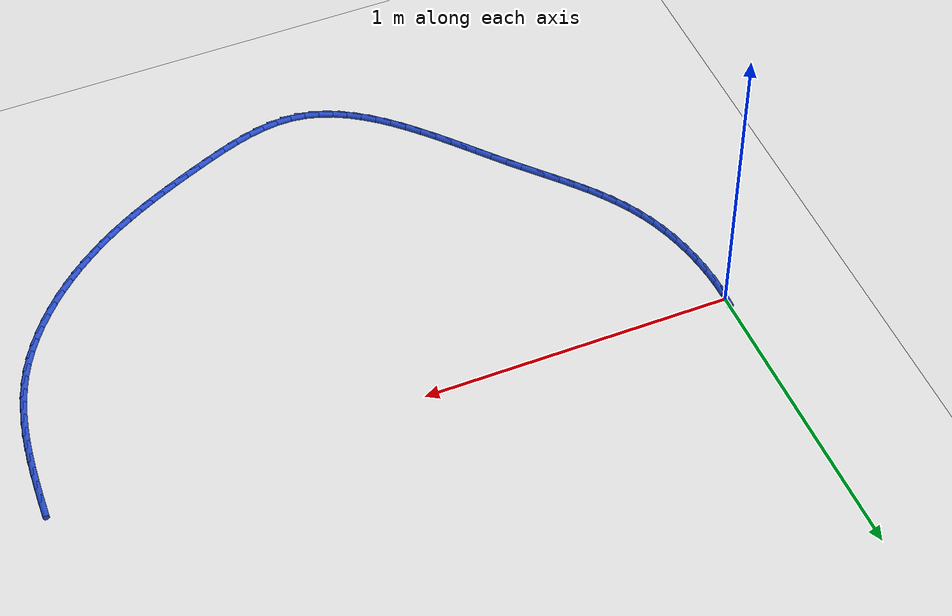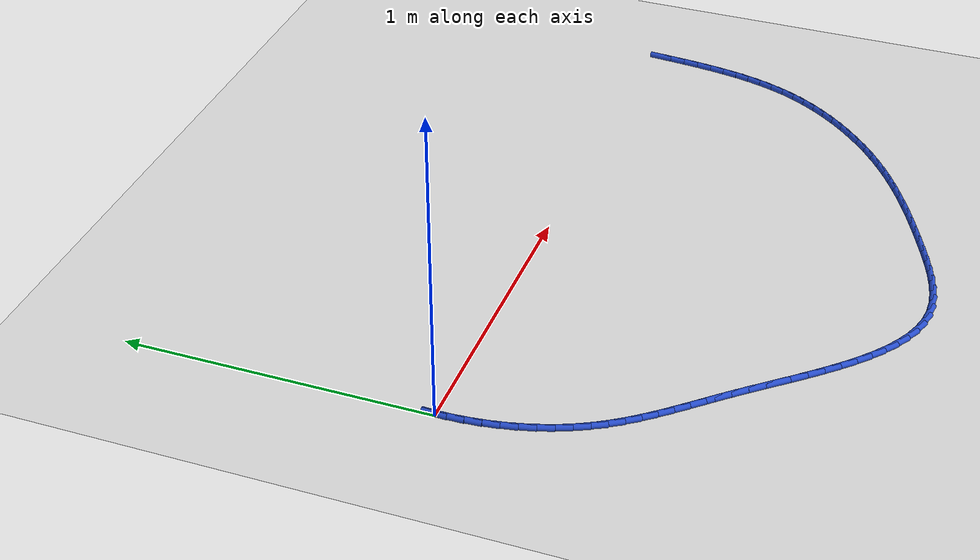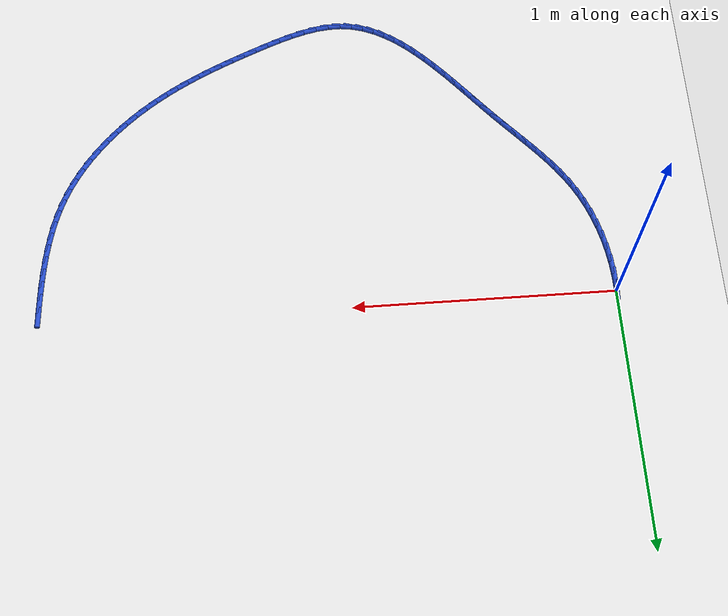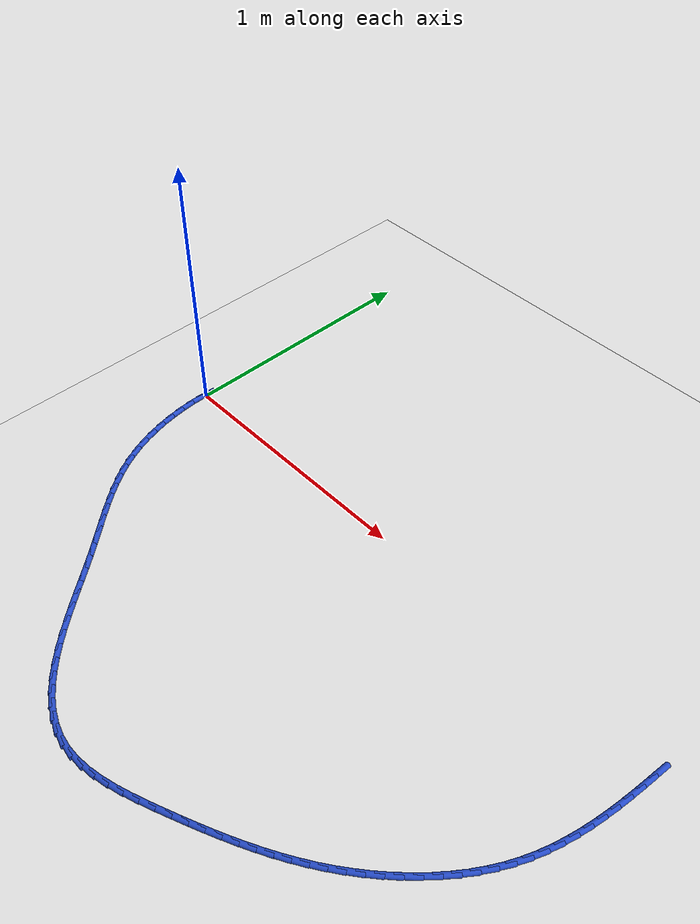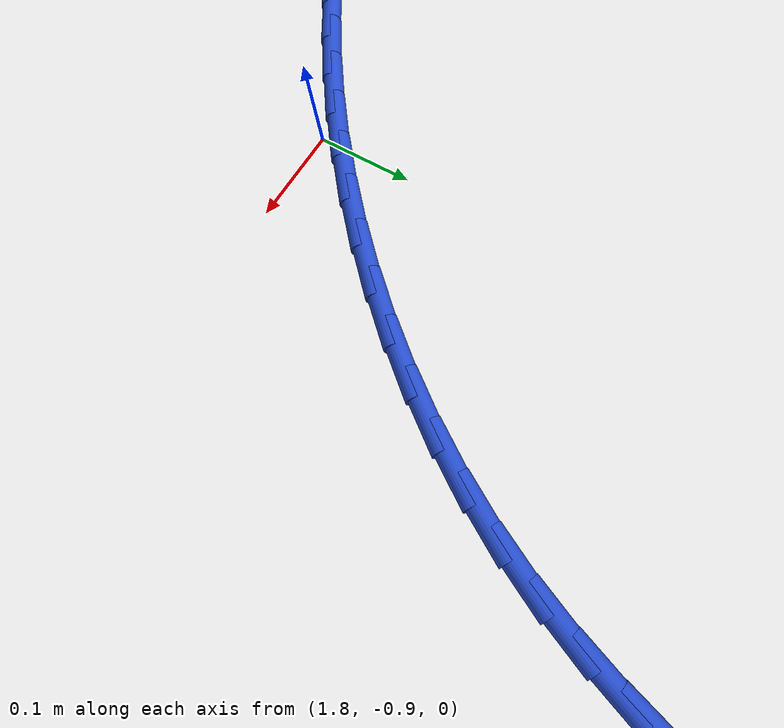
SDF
<sdf version="1.6">
 <world name="default">
  <model name="ground_plane">
   <static>1</static>
   <link name="link">
    <collision name="collision">
     <geometry><plane><normal>0 0 1</normal><size>100 100</size></plane></geometry>
     <surface><friction><ode><mu>100</mu><mu2>50</mu2></ode></friction></surface>
    </collision>
    <visual name="visual">
     <cast_shadows>0</cast_shadows>
     <geometry><plane><normal>0 0 1</normal><size>100 100</size></plane></geometry>
     <material>
      <script><uri>file://media/materials/scripts/gazebo.material</uri><name>Gazebo/WhiteGlow</name></script>
     </material>
    </visual>
   </link>
  </model>
  <model name="line">
   <link name="link_0">
    <pose>3.469446951953614e-18 -1.1102230246251565e-16 0.01 0 1.57 1.524657564823388</pose>
    <collision name="collision">
     <geometry><cylinder><radius>0.01</radius><length>0.08</length></cylinder></geometry>
    </collision>
    <visual name="visual">
     <material>
      <script><name>Gazebo/Blue</name><uri>file://media/materials/scripts/gazebo.material</uri></script>
     </material>
     <geometry><cylinder><radius>0.01</radius><length>0.08</length></cylinder></geometry>
    </visual>
   </link>
   <link name="link_71">
    <pose>2.1738354130763105 -0.03887150856480932 0.01 0 1.57 1.4898522417251467</pose>
    <collision name="collision">
     <geometry><cylinder><radius>0.01</radius><length>0.08</length></cylinder></geometry>
    </collision>
    <visual name="visual">
     <material>
      <script><name>Gazebo/Blue</name><uri>file://media/materials/scripts/gazebo.material</uri></script>
     </material>
     <geometry><cylinder><radius>0.01</radius><length>0.08</length></cylinder></geometry>
    </visual>
   </link>
   <link name="link_72">
    <pose>2.1695282041705197 -0.09196739476186985 0.01 0 1.57 1.478550149031034</pose>
    <collision name="collision">
     <geometry><cylinder><radius>0.01</radius><length>0.08</length></cylinder></geometry>
    </collision>
    <visual name="visual">
     <material>
      <script><name>Gazebo/Blue</name><uri>file://media/materials/scripts/gazebo.material</uri></script>
     </material>
     <geometry><cylinder><radius>0.01</radius><length>0.08</length></cylinder></geometry>
    </visual>
   </link>
   <link name="link_73">
    <pose>2.1646841968164026 -0.14433010369966331 0.01 0 1.57 1.461595255459424</pose>
    <collision name="collision">
     <geometry><cylinder><radius>0.01</radius><length>0.08</length></cylinder></geometry>
    </collision>
    <visual name="visual">
     <material>
      <script><name>Gazebo/Blue</name><uri>file://media/materials/scripts/gazebo.material</uri></script>
     </material>
     <geometry><cylinder><radius>0.01</radius><length>0.08</length></cylinder></geometry>
    </visual>
   </link>
   <link name="link_74">
    <pose>2.1590263984578035 -0.19593482588387853 0.01 0 1.57 1.4387798668161969</pose>
    <collision name="collision">
     <geometry><cylinder><radius>0.01</radius><length>0.08</length></cylinder></geometry>
    </collision>
    <visual name="visual">
     <material>
      <script><name>Gazebo/Blue</name><uri>file://media/materials/scripts/gazebo.material</uri></script>
     </material>
     <geometry><cylinder><radius>0.01</radius><length>0.08</length></cylinder></geometry>
    </visual>
   </link>
   <link name="link_75">
    <pose>2.152277816538565 -0.24675675182020665 0.01 0 1.57 1.4099181044216769</pose>
    <collision name="collision">
     <geometry><cylinder><radius>0.01</radius><length>0.08</length></cylinder></geometry>
    </collision>
    <visual name="visual">
     <material>
      <script><name>Gazebo/Blue</name><uri>file://media/materials/scripts/gazebo.material</uri></script>
     </material>
     <geometry><cylinder><radius>0.01</radius><length>0.08</length></cylinder></geometry>
    </visual>
   </link>
   <link name="link_76">
    <pose>2.1441614585025284 -0.296771072014338 0.01 0 1.57 1.374872469460773</pose>
    <collision name="collision">
     <geometry><cylinder><radius>0.01</radius><length>0.08</length></cylinder></geometry>
    </collision>
    <visual name="visual">
     <material>
      <script><name>Gazebo/Blue</name><uri>file://media/materials/scripts/gazebo.material</uri></script>
     </material>
     <geometry><cylinder><radius>0.01</radius><length>0.08</length></cylinder></geometry>
    </visual>
   </link>
   <link name="link_77">
    <pose>2.1344003317935374 -0.34595297697196303 0.01 0 1.57 1.3335895628494796</pose>
    <collision name="collision">
     <geometry><cylinder><radius>0.01</radius><length>0.08</length></cylinder></geometry>
    </collision>
    <visual name="visual">
     <material>
      <script><name>Gazebo/Blue</name><uri>file://media/materials/scripts/gazebo.material</uri></script>
     </material>
     <geometry><cylinder><radius>0.01</radius><length>0.08</length></cylinder></geometry>
    </visual>
   </link>
   <link name="link_78">
    <pose>2.122717443855434 -0.39427765719877295 0.01 0 1.57 1.2861437587872449</pose>
    <collision name="collision">
     <geometry><cylinder><radius>0.01</radius><length>0.08</length></cylinder></geometry>
    </collision>
    <visual name="visual">
     <material>
      <script><name>Gazebo/Blue</name><uri>file://media/materials/scripts/gazebo.material</uri></script>
     </material>
     <geometry><cylinder><radius>0.01</radius><length>0.08</length></cylinder></geometry>
    </visual>
   </link>
   <link name="link_79">
    <pose>2.108835802132061 -0.44172030320045635 0.01 0 1.57 1.2327848055850747</pose>
    <collision name="collision">
     <geometry><cylinder><radius>0.01</radius><length>0.08</length></cylinder></geometry>
    </collision>
    <visual name="visual">
     <material>
      <script><name>Gazebo/Blue</name><uri>file://media/materials/scripts/gazebo.material</uri></script>
     </material>
     <geometry><cylinder><radius>0.01</radius><length>0.08</length></cylinder></geometry>
    </visual>
   </link>
   <link name="link_80">
    <pose>2.092478414067261 -0.4882561054827045 0.01 0 1.57 1.1739815985493063</pose>
    <collision name="collision">
     <geometry><cylinder><radius>0.01</radius><length>0.08</length></cylinder></geometry>
    </collision>
    <visual name="visual">
     <material>
      <script><name>Gazebo/Blue</name><uri>file://media/materials/scripts/gazebo.material</uri></script>
     </material>
     <geometry><cylinder><radius>0.01</radius><length>0.08</length></cylinder></geometry>
    </visual>
   </link>
   <link name="link_81">
    <pose>2.0733682871048775 -0.5338602545512079 0.01 0 1.57 1.1105774321517823</pose>
    <collision name="collision">
     <geometry><cylinder><radius>0.01</radius><length>0.08</length></cylinder></geometry>
    </collision>
    <visual name="visual">
     <material>
      <script><name>Gazebo/Blue</name><uri>file://media/materials/scripts/gazebo.material</uri></script>
     </material>
     <geometry><cylinder><radius>0.01</radius><length>0.08</length></cylinder></geometry>
    </visual>
   </link>
   <link name="link_82">
    <pose>2.0512361231293967 -0.5785066281923247 0.01 0 1.57 1.047197153573495</pose>
    <collision name="collision">
     <geometry><cylinder><radius>0.01</radius><length>0.08</length></cylinder></geometry>
    </collision>
    <visual name="visual">
     <material>
      <script><name>Gazebo/Blue</name><uri>file://media/materials/scripts/gazebo.material</uri></script>
     </material>
     <geometry><cylinder><radius>0.01</radius><length>0.08</length></cylinder></geometry>
    </visual>
   </link>
   <link name="link_83">
    <pose>2.0260510417684476 -0.6221284286455913 0.01 0 1.57 0.988217333094744</pose>
    <collision name="collision">
     <geometry><cylinder><radius>0.01</radius><length>0.08</length></cylinder></geometry>
    </collision>
    <visual name="visual">
     <material>
      <script><name>Gazebo/Blue</name><uri>file://media/materials/scripts/gazebo.material</uri></script>
     </material>
     <geometry><cylinder><radius>0.01</radius><length>0.08</length></cylinder></geometry>
    </visual>
   </link>
   <link name="link_84">
    <pose>1.998060724702087 -0.6646113337353893 0.01 0 1.57 0.9333482089220307</pose>
    <collision name="collision">
     <geometry><cylinder><radius>0.01</radius><length>0.08</length></cylinder></geometry>
    </collision>
    <visual name="visual">
     <material>
      <script><name>Gazebo/Blue</name><uri>file://media/materials/scripts/gazebo.material</uri></script>
     </material>
     <geometry><cylinder><radius>0.01</radius><length>0.08</length></cylinder></geometry>
    </visual>
   </link>
   <link name="link_85">
    <pose>1.9675286379118588 -0.7058383283862948 0.01 0 1.57 0.882030558041442</pose>
    <collision name="collision">
     <geometry><cylinder><radius>0.01</radius><length>0.08</length></cylinder></geometry>
    </collision>
    <visual name="visual">
     <material>
      <script><name>Gazebo/Blue</name><uri>file://media/materials/scripts/gazebo.material</uri></script>
     </material>
     <geometry><cylinder><radius>0.01</radius><length>0.08</length></cylinder></geometry>
    </visual>
   </link>
   <link name="link_86">
    <pose>1.9347182473793065 -0.7456923975228827 0.01 0 1.57 0.8337131959279223</pose>
    <collision name="collision">
     <geometry><cylinder><radius>0.01</radius><length>0.08</length></cylinder></geometry>
    </collision>
    <visual name="visual">
     <material>
      <script><name>Gazebo/Blue</name><uri>file://media/materials/scripts/gazebo.material</uri></script>
     </material>
     <geometry><cylinder><radius>0.01</radius><length>0.08</length></cylinder></geometry>
    </visual>
   </link>
   <link name="link_87">
    <pose>1.8998930190859724 -0.7840565260697301 0.01 0 1.57 0.7878605001474949</pose>
    <collision name="collision">
     <geometry><cylinder><radius>0.01</radius><length>0.08</length></cylinder></geometry>
    </collision>
    <visual name="visual">
     <material>
      <script><name>Gazebo/Blue</name><uri>file://media/materials/scripts/gazebo.material</uri></script>
     </material>
     <geometry><cylinder><radius>0.01</radius><length>0.08</length></cylinder></geometry>
    </visual>
   </link>
   <link name="link_88">
    <pose>1.863316419013401 -0.8208136989514102 0.01 0 1.57 0.7439527068544914</pose>
    <collision name="collision">
     <geometry><cylinder><radius>0.01</radius><length>0.08</length></cylinder></geometry>
    </collision>
    <visual name="visual">
     <material>
      <script><name>Gazebo/Blue</name><uri>file://media/materials/scripts/gazebo.material</uri></script>
     </material>
     <geometry><cylinder><radius>0.01</radius><length>0.08</length></cylinder></geometry>
    </visual>
   </link>
   <link name="link_89">
    <pose>1.8252519131431366 -0.8558469010925 0.01 0 1.57 0.7014810290741179</pose>
    <collision name="collision">
     <geometry><cylinder><radius>0.01</radius><length>0.08</length></cylinder></geometry>
    </collision>
    <visual name="visual">
     <material>
      <script><name>Gazebo/Blue</name><uri>file://media/materials/scripts/gazebo.material</uri></script>
     </material>
     <geometry><cylinder><radius>0.01</radius><length>0.08</length></cylinder></geometry>
    </visual>
   </link>
   <link name="link_90">
    <pose>1.7859629674567217 -0.8890391174175747 0.01 0 1.57 0.660009908917203</pose>
    <collision name="collision">
     <geometry><cylinder><radius>0.01</radius><length>0.08</length></cylinder></geometry>
    </collision>
    <visual name="visual">
     <material>
      <script><name>Gazebo/Blue</name><uri>file://media/materials/scripts/gazebo.material</uri></script>
     </material>
     <geometry><cylinder><radius>0.01</radius><length>0.08</length></cylinder></geometry>
    </visual>
   </link>
   <link name="link_91">
    <pose>1.7457006581400696 -0.9202875327480912 0.01 0 1.57 0.6201118628219059</pose>
    <collision name="collision">
     <geometry><cylinder><radius>0.01</radius><length>0.08</length></cylinder></geometry>
    </collision>
    <visual name="visual">
     <material>
      <script><name>Gazebo/Blue</name><uri>file://media/materials/scripts/gazebo.material</uri></script>
     </material>
     <geometry><cylinder><radius>0.01</radius><length>0.08</length></cylinder></geometry>
    </visual>
   </link>
   <link name="link_92">
    <pose>1.704567004126232 -0.9496601658468562 0.01 0 1.57 0.5826568131845521</pose>
    <collision name="collision">
     <geometry><cylinder><radius>0.01</radius><length>0.08</length></cylinder></geometry>
    </collision>
    <visual name="visual">
     <material>
      <script><name>Gazebo/Blue</name><uri>file://media/materials/scripts/gazebo.material</uri></script>
     </material>
     <geometry><cylinder><radius>0.01</radius><length>0.08</length></cylinder></geometry>
    </visual>
   </link>
   <link name="link_93">
    <pose>1.6625654168196515 -0.9773380491840667 0.01 0 1.57 0.5480252665488854</pose>
    <collision name="collision">
     <geometry><cylinder><radius>0.01</radius><length>0.08</length></cylinder></geometry>
    </collision>
    <visual name="visual">
     <material>
      <script><name>Gazebo/Blue</name><uri>file://media/materials/scripts/gazebo.material</uri></script>
     </material>
     <geometry><cylinder><radius>0.01</radius><length>0.08</length></cylinder></geometry>
    </visual>
   </link>
   <link name="link_94">
    <pose>1.619697550907145 -1.003504228597198 0.01 0 1.57 0.5165138904151446</pose>
    <collision name="collision">
     <geometry><cylinder><radius>0.01</radius><length>0.08</length></cylinder></geometry>
    </collision>
    <visual name="visual">
     <material>
      <script><name>Gazebo/Blue</name><uri>file://media/materials/scripts/gazebo.material</uri></script>
     </material>
     <geometry><cylinder><radius>0.01</radius><length>0.08</length></cylinder></geometry>
    </visual>
   </link>
   <link name="link_95">
    <pose>1.575965061075528 -1.028341749923727 0.01 0 1.57 0.4883439446180496</pose>
    <collision name="collision">
     <geometry><cylinder><radius>0.01</radius><length>0.08</length></cylinder></geometry>
    </collision>
    <visual name="visual">
     <material>
      <script><name>Gazebo/Blue</name><uri>file://media/materials/scripts/gazebo.material</uri></script>
     </material>
     <geometry><cylinder><radius>0.01</radius><length>0.08</length></cylinder></geometry>
    </visual>
   </link>
   <link name="link_96">
    <pose>1.5313696020116199 -1.0520336590011292 0.01 0 1.57 0.4636644311893334</pose>
    <collision name="collision">
     <geometry><cylinder><radius>0.01</radius><length>0.08</length></cylinder></geometry>
    </collision>
    <visual name="visual">
     <material>
      <script><name>Gazebo/Blue</name><uri>file://media/materials/scripts/gazebo.material</uri></script>
     </material>
     <geometry><cylinder><radius>0.01</radius><length>0.08</length></cylinder></geometry>
    </visual>
   </link>
   <link name="link_97">
    <pose>1.4859128284022363 -1.0747630016668803 0.01 0 1.57 0.44255863814460367</pose>
    <collision name="collision">
     <geometry><cylinder><radius>0.01</radius><length>0.08</length></cylinder></geometry>
    </collision>
    <visual name="visual">
     <material>
      <script><name>Gazebo/Blue</name><uri>file://media/materials/scripts/gazebo.material</uri></script>
     </material>
     <geometry><cylinder><radius>0.01</radius><length>0.08</length></cylinder></geometry>
    </visual>
   </link>
   <link name="link_98">
    <pose>1.4395963949341943 -1.0967128237584571 0.01 0 1.57 0.4250526262268753</pose>
    <collision name="collision">
     <geometry><cylinder><radius>0.01</radius><length>0.08</length></cylinder></geometry>
    </collision>
    <visual name="visual">
     <material>
      <script><name>Gazebo/Blue</name><uri>file://media/materials/scripts/gazebo.material</uri></script>
     </material>
     <geometry><cylinder><radius>0.01</radius><length>0.08</length></cylinder></geometry>
    </visual>
   </link>
   <link name="link_99">
    <pose>1.3924219562943114 -1.1180661711133357 0.01 0 1.57 0.4111243921235986</pose>
    <collision name="collision">
     <geometry><cylinder><radius>0.01</radius><length>0.08</length></cylinder></geometry>
    </collision>
    <visual name="visual">
     <material>
      <script><name>Gazebo/Blue</name><uri>file://media/materials/scripts/gazebo.material</uri></script>
     </material>
     <geometry><cylinder><radius>0.01</radius><length>0.08</length></cylinder></geometry>
    </visual>
   </link>
   <link name="link_100">
    <pose>1.3443911671694035 -1.1390060895689924 0.01 0 1.57 0.4006875309648544</pose>
    <collision name="collision">
     <geometry><cylinder><radius>0.01</radius><length>0.08</length></cylinder></geometry>
    </collision>
    <visual name="visual">
     <material>
      <script><name>Gazebo/Blue</name><uri>file://media/materials/scripts/gazebo.material</uri></script>
     </material>
     <geometry><cylinder><radius>0.01</radius><length>0.08</length></cylinder></geometry>
    </visual>
   </link>
   <link name="link_101">
    <pose>1.2955061796531888 -1.159713960172673 0.01 0 1.57 0.38894460054918717</pose>
    <collision name="collision">
     <geometry><cylinder><radius>0.01</radius><length>0.08</length></cylinder></geometry>
    </collision>
    <visual name="visual">
     <material>
      <script><name>Gazebo/Blue</name><uri>file://media/materials/scripts/gazebo.material</uri></script>
     </material>
     <geometry><cylinder><radius>0.01</radius><length>0.08</length></cylinder></geometry>
    </visual>
   </link>
   <link name="link_102">
    <pose>1.2458623960967359 -1.18005906110889 0.01 0 1.57 0.3654904739849047</pose>
    <collision name="collision">
     <geometry><cylinder><radius>0.01</radius><length>0.08</length></cylinder></geometry>
    </collision>
    <visual name="visual">
     <material>
      <script><name>Gazebo/Blue</name><uri>file://media/materials/scripts/gazebo.material</uri></script>
     </material>
     <geometry><cylinder><radius>0.01</radius><length>0.08</length></cylinder></geometry>
    </visual>
   </link>
   <link name="link_103">
    <pose>1.1957575782850147 -1.199233386011792 0.01 0 1.57 0.3281782316009494</pose>
    <collision name="collision">
     <geometry><cylinder><radius>0.01</radius><length>0.08</length></cylinder></geometry>
    </collision>
    <visual name="visual">
     <material>
      <script><name>Gazebo/Blue</name><uri>file://media/materials/scripts/gazebo.material</uri></script>
     </material>
     <geometry><cylinder><radius>0.01</radius><length>0.08</length></cylinder></geometry>
    </visual>
   </link>
   <link name="link_104">
    <pose>1.1455160072583728 -1.216340170202621 0.01 0 1.57 0.27536636250111074</pose>
    <collision name="collision">
     <geometry><cylinder><radius>0.01</radius><length>0.08</length></cylinder></geometry>
    </collision>
    <visual name="visual">
     <material>
      <script><name>Gazebo/Blue</name><uri>file://media/materials/scripts/gazebo.material</uri></script>
     </material>
     <geometry><cylinder><radius>0.01</radius><length>0.08</length></cylinder></geometry>
    </visual>
   </link>
   <link name="link_105">
    <pose>1.0954619640571595 -1.2304826490026177 0.01 0 1.57 0.20462358492828892</pose>
    <collision name="collision">
     <geometry><cylinder><radius>0.01</radius><length>0.08</length></cylinder></geometry>
    </collision>
    <visual name="visual">
     <material>
      <script><name>Gazebo/Blue</name><uri>file://media/materials/scripts/gazebo.material</uri></script>
     </material>
     <geometry><cylinder><radius>0.01</radius><length>0.08</length></cylinder></geometry>
    </visual>
   </link>
   <link name="link_106">
    <pose>1.0459197297217213 -1.2407640577330235 0.01 0 1.57 0.11292364957570832</pose>
    <collision name="collision">
     <geometry><cylinder><radius>0.01</radius><length>0.08</length></cylinder></geometry>
    </collision>
    <visual name="visual">
     <material>
      <script><name>Gazebo/Blue</name><uri>file://media/materials/scripts/gazebo.material</uri></script>
     </material>
     <geometry><cylinder><radius>0.01</radius><length>0.08</length></cylinder></geometry>
    </visual>
   </link>
   <link name="link_107">
    <pose>0.997213585292407 -1.2462876317150797 0.01 0 1.57 -0.0027557678374855745</pose>
    <collision name="collision">
     <geometry><cylinder><radius>0.01</radius><length>0.08</length></cylinder></geometry>
    </collision>
    <visual name="visual">
     <material>
      <script><name>Gazebo/Blue</name><uri>file://media/materials/scripts/gazebo.material</uri></script>
     </material>
     <geometry><cylinder><radius>0.01</radius><length>0.08</length></cylinder></geometry>
    </visual>
   </link>
   <link name="link_108">
    <pose>0.949667811809564 -1.246156606270027 0.01 0 1.57 -0.13999414257578854</pose>
    <collision name="collision">
     <geometry><cylinder><radius>0.01</radius><length>0.08</length></cylinder></geometry>
    </collision>
    <visual name="visual">
     <material>
      <script><name>Gazebo/Blue</name><uri>file://media/materials/scripts/gazebo.material</uri></script>
     </material>
     <geometry><cylinder><radius>0.01</radius><length>0.08</length></cylinder></geometry>
    </visual>
   </link>
   <link name="link_109">
    <pose>0.9035525603479266 -1.239658233126318 0.01 0 1.57 -0.2751125725893283</pose>
    <collision name="collision">
     <geometry><cylinder><radius>0.01</radius><length>0.08</length></cylinder></geometry>
    </collision>
    <visual name="visual">
     <material>
      <script><name>Gazebo/Blue</name><uri>file://media/materials/scripts/gazebo.material</uri></script>
     </material>
     <geometry><cylinder><radius>0.01</radius><length>0.08</length></cylinder></geometry>
    </visual>
   </link>
   <link name="link_110">
    <pose>0.8588550879092227 -1.2270414707185993 0.01 0 1.57 -0.39667834192204876</pose>
    <collision name="collision">
     <geometry><cylinder><radius>0.01</radius><length>0.08</length></cylinder></geometry>
    </collision>
    <visual name="visual">
     <material>
      <script><name>Gazebo/Blue</name><uri>file://media/materials/scripts/gazebo.material</uri></script>
     </material>
     <geometry><cylinder><radius>0.01</radius><length>0.08</length></cylinder></geometry>
    </visual>
   </link>
   <link name="link_111">
    <pose>0.8154705410754651 -1.2088684095574465 0.01 0 1.57 -0.5022971467590117</pose>
    <collision name="collision">
     <geometry><cylinder><radius>0.01</radius><length>0.08</length></cylinder></geometry>
    </collision>
    <visual name="visual">
     <material>
      <script><name>Gazebo/Blue</name><uri>file://media/materials/scripts/gazebo.material</uri></script>
     </material>
     <geometry><cylinder><radius>0.01</radius><length>0.08</length></cylinder></geometry>
    </visual>
   </link>
   <link name="link_112">
    <pose>0.7732940164637929 -1.1857013100104918 0.01 0 1.57 -0.5916447157645853</pose>
    <collision name="collision">
     <geometry><cylinder><radius>0.01</radius><length>0.08</length></cylinder></geometry>
    </collision>
    <visual name="visual">
     <material>
      <script><name>Gazebo/Blue</name><uri>file://media/materials/scripts/gazebo.material</uri></script>
     </material>
     <geometry><cylinder><radius>0.01</radius><length>0.08</length></cylinder></geometry>
    </visual>
   </link>
   <link name="link_113">
    <pose>0.732220610691345 -1.1581024324453673 0.01 0 1.57 -0.6656721044860832</pose>
    <collision name="collision">
     <geometry><cylinder><radius>0.01</radius><length>0.08</length></cylinder></geometry>
    </collision>
    <visual name="visual">
     <material>
      <script><name>Gazebo/Blue</name><uri>file://media/materials/scripts/gazebo.material</uri></script>
     </material>
     <geometry><cylinder><radius>0.01</radius><length>0.08</length></cylinder></geometry>
    </visual>
   </link>
   <link name="link_114">
    <pose>0.6921454203752615 -1.1266340372297057 0.01 0 1.57 -0.7258907209878448</pose>
    <collision name="collision">
     <geometry><cylinder><radius>0.01</radius><length>0.08</length></cylinder></geometry>
    </collision>
    <visual name="visual">
     <material>
      <script><name>Gazebo/Blue</name><uri>file://media/materials/scripts/gazebo.material</uri></script>
     </material>
     <geometry><cylinder><radius>0.01</radius><length>0.08</length></cylinder></geometry>
    </visual>
   </link>
   <link name="link_115">
    <pose>0.6529635421326813 -1.0918583847311394 0.01 0 1.57 -0.7739012021844189</pose>
    <collision name="collision">
     <geometry><cylinder><radius>0.01</radius><length>0.08</length></cylinder></geometry>
    </collision>
    <visual name="visual">
     <material>
      <script><name>Gazebo/Blue</name><uri>file://media/materials/scripts/gazebo.material</uri></script>
     </material>
     <geometry><cylinder><radius>0.01</radius><length>0.08</length></cylinder></geometry>
    </visual>
   </link>
   <link name="link_116">
    <pose>0.614570072580743 -1.0543377353173002 0.01 0 1.57 -0.8111428351776248</pose>
    <collision name="collision">
     <geometry><cylinder><radius>0.01</radius><length>0.08</length></cylinder></geometry>
    </collision>
    <visual name="visual">
     <material>
      <script><name>Gazebo/Blue</name><uri>file://media/materials/scripts/gazebo.material</uri></script>
     </material>
     <geometry><cylinder><radius>0.01</radius><length>0.08</length></cylinder></geometry>
    </visual>
   </link>
   <link name="link_117">
    <pose>0.5768601083365857 -1.0146343493558199 0.01 0 1.57 -0.8387855053886418</pose>
    <collision name="collision">
     <geometry><cylinder><radius>0.01</radius><length>0.08</length></cylinder></geometry>
    </collision>
    <visual name="visual">
     <material>
      <script><name>Gazebo/Blue</name><uri>file://media/materials/scripts/gazebo.material</uri></script>
     </material>
     <geometry><cylinder><radius>0.01</radius><length>0.08</length></cylinder></geometry>
    </visual>
   </link>
   <link name="link_118">
    <pose>0.5397287460173498 -0.9733104872143318 0.01 0 1.57 -0.8576964358848337</pose>
    <collision name="collision">
     <geometry><cylinder><radius>0.01</radius><length>0.08</length></cylinder></geometry>
    </collision>
    <visual name="visual">
     <material>
      <script><name>Gazebo/Blue</name><uri>file://media/materials/scripts/gazebo.material</uri></script>
     </material>
     <geometry><cylinder><radius>0.01</radius><length>0.08</length></cylinder></geometry>
    </visual>
   </link>
   <link name="link_119">
    <pose>0.5030710822401732 -0.9309284092604674 0.01 0 1.57 -0.8684380724128091</pose>
    <collision name="collision">
     <geometry><cylinder><radius>0.01</radius><length>0.08</length></cylinder></geometry>
    </collision>
    <visual name="visual">
     <material>
      <script><name>Gazebo/Blue</name><uri>file://media/materials/scripts/gazebo.material</uri></script>
     </material>
     <geometry><cylinder><radius>0.01</radius><length>0.08</length></cylinder></geometry>
    </visual>
   </link>
   <link name="link_120">
    <pose>0.46678221362219596 -0.8880503758618599 0.01 0 1.57 -0.8712726377501243</pose>
    <collision name="collision">
     <geometry><cylinder><radius>0.01</radius><length>0.08</length></cylinder></geometry>
    </collision>
    <visual name="visual">
     <material>
      <script><name>Gazebo/Blue</name><uri>file://media/materials/scripts/gazebo.material</uri></script>
     </material>
     <geometry><cylinder><radius>0.01</radius><length>0.08</length></cylinder></geometry>
    </visual>
   </link>
   <link name="link_121">
    <pose>0.4307572367805566 -0.8452386473861402 0.01 0 1.57 -0.8661605280474074</pose>
    <collision name="collision">
     <geometry><cylinder><radius>0.01</radius><length>0.08</length></cylinder></geometry>
    </collision>
    <visual name="visual">
     <material>
      <script><name>Gazebo/Blue</name><uri>file://media/materials/scripts/gazebo.material</uri></script>
     </material>
     <geometry><cylinder><radius>0.01</radius><length>0.08</length></cylinder></geometry>
    </visual>
   </link>
   <link name="link_122">
    <pose>0.3948912483323942 -0.8030554842009412 0.01 0 1.57 -0.8530854309613412</pose>
    <collision name="collision">
     <geometry><cylinder><radius>0.01</radius><length>0.08</length></cylinder></geometry>
    </collision>
    <visual name="visual">
     <material>
      <script><name>Gazebo/Blue</name><uri>file://media/materials/scripts/gazebo.material</uri></script>
     </material>
     <geometry><cylinder><radius>0.01</radius><length>0.08</length></cylinder></geometry>
    </visual>
   </link>
   <link name="link_123">
    <pose>0.3590875011624223 -0.7620443956709481 0.01 0 1.57 -0.8399434481173078</pose>
    <collision name="collision">
     <geometry><cylinder><radius>0.01</radius><length>0.08</length></cylinder></geometry>
    </collision>
    <visual name="visual">
     <material>
      <script><name>Gazebo/Blue</name><uri>file://media/materials/scripts/gazebo.material</uri></script>
     </material>
     <geometry><cylinder><radius>0.01</radius><length>0.08</length></cylinder></geometry>
    </visual>
   </link>
   <link name="link_124">
    <pose>0.3234490625036284 -0.7222895242507328 0.01 0 1.57 -0.8356821718122907</pose>
    <collision name="collision">
     <geometry><cylinder><radius>0.01</radius><length>0.08</length></cylinder></geometry>
    </collision>
    <visual name="visual">
     <material>
      <script><name>Gazebo/Blue</name><uri>file://media/materials/scripts/gazebo.material</uri></script>
     </material>
     <geometry><cylinder><radius>0.01</radius><length>0.08</length></cylinder></geometry>
    </visual>
   </link>
   <link name="link_125">
    <pose>0.28828584837892357 -0.6833994735243689 0.01 0 1.57 -0.8412425797536545</pose>
    <collision name="collision">
     <geometry><cylinder><radius>0.01</radius><length>0.08</length></cylinder></geometry>
    </collision>
    <visual name="visual">
     <material>
      <script><name>Gazebo/Blue</name><uri>file://media/materials/scripts/gazebo.material</uri></script>
     </material>
     <geometry><cylinder><radius>0.01</radius><length>0.08</length></cylinder></geometry>
    </visual>
   </link>
   <link name="link_126">
    <pose>0.25391733849511045 -0.6449608604670771 0.01 0 1.57 -0.8570947629847299</pose>
    <collision name="collision">
     <geometry><cylinder><radius>0.01</radius><length>0.08</length></cylinder></geometry>
    </collision>
    <visual name="visual">
     <material>
      <script><name>Gazebo/Blue</name><uri>file://media/materials/scripts/gazebo.material</uri></script>
     </material>
     <geometry><cylinder><radius>0.01</radius><length>0.08</length></cylinder></geometry>
    </visual>
   </link>
   <link name="link_127">
    <pose>0.22066301255899318 -0.6065603020540786 0.01 0 1.57 -0.8836019921190669</pose>
    <collision name="collision">
     <geometry><cylinder><radius>0.01</radius><length>0.08</length></cylinder></geometry>
    </collision>
    <visual name="visual">
     <material>
      <script><name>Gazebo/Blue</name><uri>file://media/materials/scripts/gazebo.material</uri></script>
     </material>
     <geometry><cylinder><radius>0.01</radius><length>0.08</length></cylinder></geometry>
    </visual>
   </link>
   <link name="link_128">
    <pose>0.1888423502773748 -0.5677844152605941 0.01 0 1.57 -0.9209511227197267</pose>
    <collision name="collision">
     <geometry><cylinder><radius>0.01</radius><length>0.08</length></cylinder></geometry>
    </collision>
    <visual name="visual">
     <material>
      <script><name>Gazebo/Blue</name><uri>file://media/materials/scripts/gazebo.material</uri></script>
     </material>
     <geometry><cylinder><radius>0.01</radius><length>0.08</length></cylinder></geometry>
    </visual>
   </link>
   <link name="link_129">
    <pose>0.1587748313570582 -0.5282198170618437 0.01 0 1.57 -0.9690456181969055</pose>
    <collision name="collision">
     <geometry><cylinder><radius>0.01</radius><length>0.08</length></cylinder></geometry>
    </collision>
    <visual name="visual">
     <material>
      <script><name>Gazebo/Blue</name><uri>file://media/materials/scripts/gazebo.material</uri></script>
     </material>
     <geometry><cylinder><radius>0.01</radius><length>0.08</length></cylinder></geometry>
    </visual>
   </link>
   <link name="link_130">
    <pose>0.13077993550484687 -0.48745312443304845 0.01 0 1.57 -1.0273723417639633</pose>
    <collision name="collision">
     <geometry><cylinder><radius>0.01</radius><length>0.08</length></cylinder></geometry>
    </collision>
    <visual name="visual">
     <material>
      <script><name>Gazebo/Blue</name><uri>file://media/materials/scripts/gazebo.material</uri></script>
     </material>
     <geometry><cylinder><radius>0.01</radius><length>0.08</length></cylinder></geometry>
    </visual>
   </link>
   <link name="link_131">
    <pose>0.10517714242754354 -0.44507095434942845 0.01 0 1.57 -1.0940534495125631</pose>
    <collision name="collision">
     <geometry><cylinder><radius>0.01</radius><length>0.08</length></cylinder></geometry>
    </collision>
    <visual name="visual">
     <material>
      <script><name>Gazebo/Blue</name><uri>file://media/materials/scripts/gazebo.material</uri></script>
     </material>
     <geometry><cylinder><radius>0.01</radius><length>0.08</length></cylinder></geometry>
    </visual>
   </link>
   <link name="link_132">
    <pose>0.0822643535394995 -0.40070741418560885 0.01 0 1.57 -1.1608214572322881</pose>
    <collision name="collision">
     <geometry><cylinder><radius>0.01</radius><length>0.08</length></cylinder></geometry>
    </collision>
    <visual name="visual">
     <material>
      <script><name>Gazebo/Blue</name><uri>file://media/materials/scripts/gazebo.material</uri></script>
     </material>
     <geometry><cylinder><radius>0.01</radius><length>0.08</length></cylinder></geometry>
    </visual>
   </link>
   <link name="link_133">
    <pose>0.062147445808692046 -0.35441922666788683 0.01 0 1.57 -1.2241439615859115</pose>
    <collision name="collision">
     <geometry><cylinder><radius>0.01</radius><length>0.08</length></cylinder></geometry>
    </collision>
    <visual name="visual">
     <material>
      <script><name>Gazebo/Blue</name><uri>file://media/materials/scripts/gazebo.material</uri></script>
     </material>
     <geometry><cylinder><radius>0.01</radius><length>0.08</length></cylinder></geometry>
    </visual>
   </link>
   <link name="link_134">
    <pose>0.04483160917193625 -0.3064847107093346 0.01 0 1.57 -1.2845526941337198</pose>
    <collision name="collision">
     <geometry><cylinder><radius>0.01</radius><length>0.08</length></cylinder></geometry>
    </collision>
    <visual name="visual">
     <material>
      <script><name>Gazebo/Blue</name><uri>file://media/materials/scripts/gazebo.material</uri></script>
     </material>
     <geometry><cylinder><radius>0.01</radius><length>0.08</length></cylinder></geometry>
    </visual>
   </link>
   <link name="link_135">
    <pose>0.030321145730544674 -0.2571841392081554 0.01 0 1.57 -1.342619202507239</pose>
    <collision name="collision">
     <geometry><cylinder><radius>0.01</radius><length>0.08</length></cylinder></geometry>
    </collision>
    <visual name="visual">
     <material>
      <script><name>Gazebo/Blue</name><uri>file://media/materials/scripts/gazebo.material</uri></script>
     </material>
     <geometry><cylinder><radius>0.01</radius><length>0.08</length></cylinder></geometry>
    </visual>
   </link>
   <link name="link_136">
    <pose>0.018620357585830492 -0.20679778506255442 0.01 0 1.57 -1.3989112176098726</pose>
    <collision name="collision">
     <geometry><cylinder><radius>0.01</radius><length>0.08</length></cylinder></geometry>
    </collision>
    <visual name="visual">
     <material>
      <script><name>Gazebo/Blue</name><uri>file://media/materials/scripts/gazebo.material</uri></script>
     </material>
     <geometry><cylinder><radius>0.01</radius><length>0.08</length></cylinder></geometry>
    </visual>
   </link>
   <link name="link_137">
    <pose>0.009733546839106202 -0.15560592117073468 0.01 0 1.57 -1.4539895701979424</pose>
    <collision name="collision">
     <geometry><cylinder><radius>0.01</radius><length>0.08</length></cylinder></geometry>
    </collision>
    <visual name="visual">
     <material>
      <script><name>Gazebo/Blue</name><uri>file://media/materials/scripts/gazebo.material</uri></script>
     </material>
     <geometry><cylinder><radius>0.01</radius><length>0.08</length></cylinder></geometry>
    </visual>
   </link>
   <link name="link_138">
    <pose>0.0036650155916845275 -0.10388882043090002 0.01 0 1.57 -1.5084097107669046</pose>
    <collision name="collision">
     <geometry><cylinder><radius>0.01</radius><length>0.08</length></cylinder></geometry>
    </collision>
    <visual name="visual">
     <material>
      <script><name>Gazebo/Blue</name><uri>file://media/materials/scripts/gazebo.material</uri></script>
     </material>
     <geometry><cylinder><radius>0.01</radius><length>0.08</length></cylinder></geometry>
    </visual>
   </link>
   <link name="link_139">
    <pose>0.0004190659448782101 -0.05192675574125426 0.01 0 1.57 -1.5627261741095773</pose>
    <collision name="collision">
     <geometry><cylinder><radius>0.01</radius><length>0.08</length></cylinder></geometry>
    </collision>
    <visual name="visual">
     <material>
      <script><name>Gazebo/Blue</name><uri>file://media/materials/scripts/gazebo.material</uri></script>
     </material>
     <geometry><cylinder><radius>0.01</radius><length>0.08</length></cylinder></geometry>
    </visual>
   </link>
   <link name="link_140">
    <pose>1.0408340855860843e-17 -3.0531133177191805e-16 0.01 0 1.57 1.5240939226800876</pose>
    <collision name="collision">
     <geometry><cylinder><radius>0.01</radius><length>0.08</length></cylinder></geometry>
    </collision>
    <visual name="visual">
     <material>
      <script><name>Gazebo/Blue</name><uri>file://media/materials/scripts/gazebo.material</uri></script>
     </material>
     <geometry><cylinder><radius>0.01</radius><length>0.08</length></cylinder></geometry>
    </visual>
   </link>
  </model>
 </world>
</sdf>
